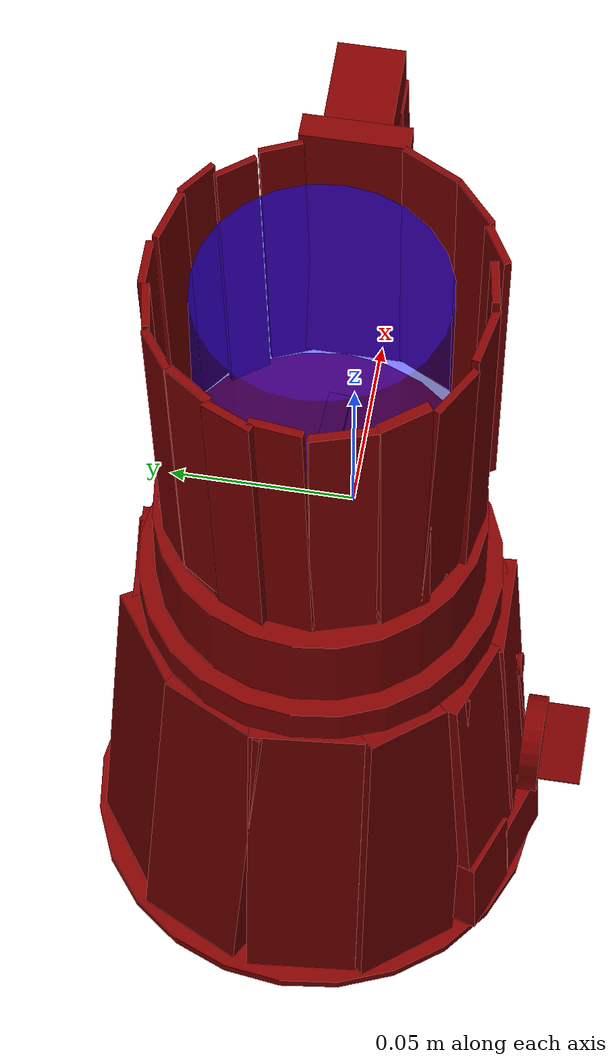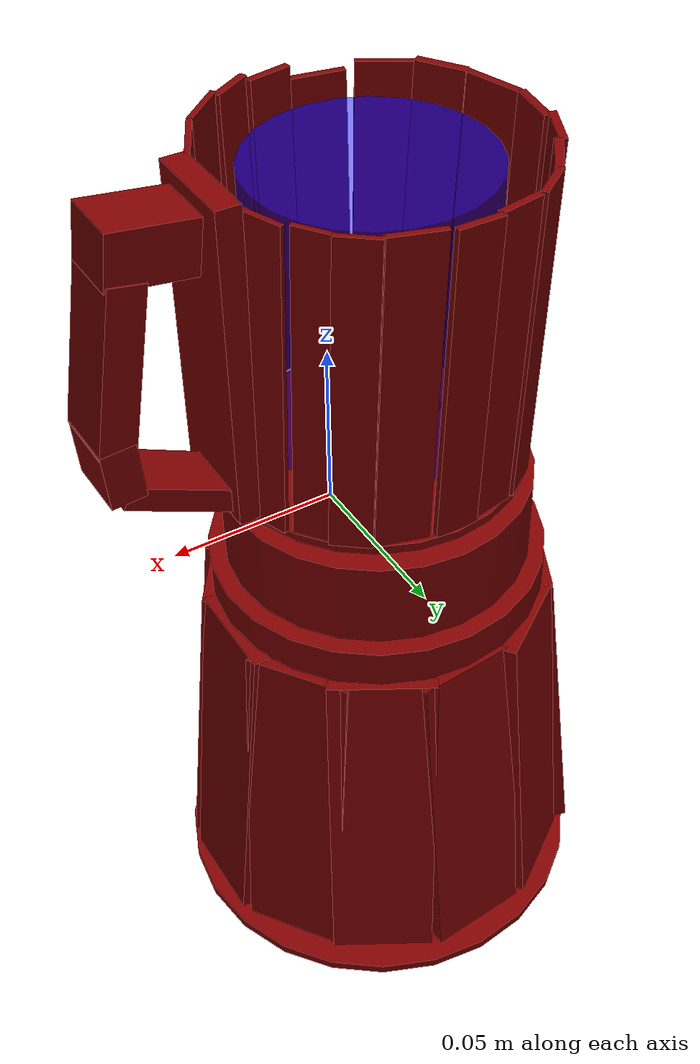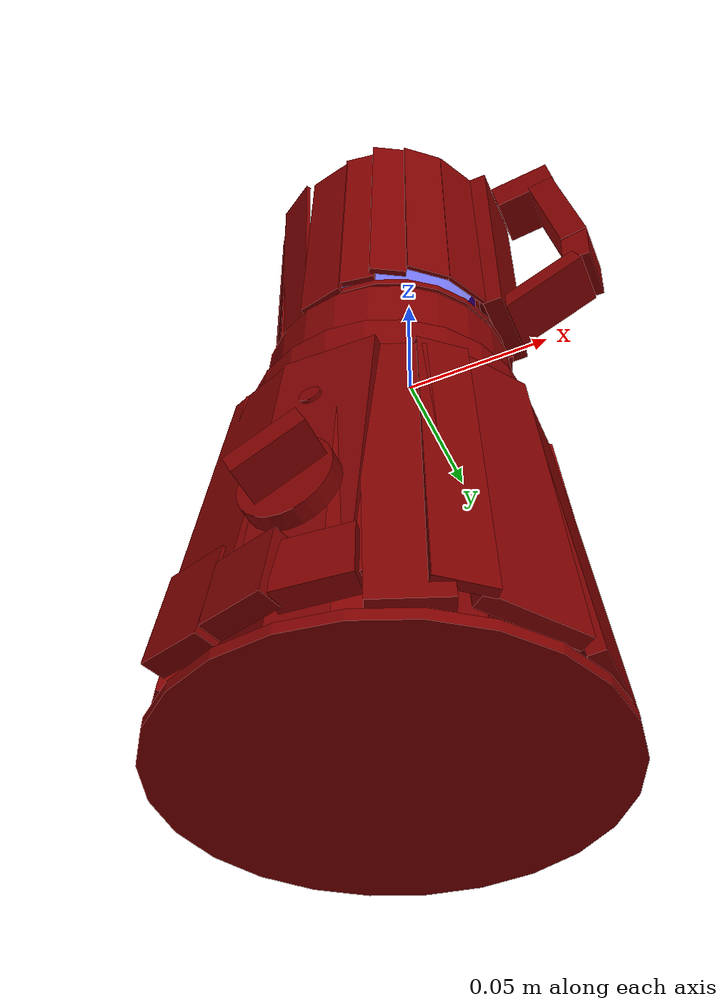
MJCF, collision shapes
<?xml version='1.0' encoding='UTF-8'?>
<mujoco model="model">
  <option timestep="0.002" gravity="0.0 0.0 -9.81"/>
  <compiler angle="radian"/>
  <asset>
    <mesh file="visuals/blade.obj" name="blade_vis"/>
    <mesh file="visuals/Body001.obj" name="Body001_vis"/>
    <texture file="visuals/T_BC001.png" name="knob_speed_material" type="2d"/>
    <mesh file="visuals/pitcher.obj" name="pitcher_vis"/>
    <mesh file="visuals/pitcher_main.obj" name="pitcher_main_vis"/>
    <mesh file="visuals/power_button.obj" name="power_button_vis"/>
    <texture file="visuals/T_BC001.png" name="Body001_material" type="2d"/>
    <material name="Body001_material" rgba="1 1 1 1.0" texture="Body001_material" shininess="0.7126775979995728" specular="1"/>
    <texture file="visuals/T_BC001.png" name="power_button_material" type="2d"/>
    <material name="power_button_material" rgba="1 1 1 1.0" texture="power_button_material" shininess="0.7126775979995728" specular="1"/>
    <texture file="visuals/T_BC001.png" name="pitcher_material" type="2d"/>
    <material name="pitcher_material" rgba="1 1 1 1.0" texture="pitcher_material" shininess="0.7126775979995728" specular="1"/>
    <texture file="visuals/T_BC001.png" name="blade_material" type="2d"/>
    <material name="blade_material" rgba="1 1 1 1.0" texture="blade_material" shininess="0.7126775979995728" specular="1"/>
    <texture file="visuals/T_BC001.png" name="pitcher_main_material" type="2d"/>
    <material name="pitcher_main_material" rgba="1 1 1 0.800000011920929" texture="pitcher_main_material" shininess="0.8092784583568573" specular="1"/>
    <mesh file="visuals/knob_speed.obj" name="knob_speed_vis"/>
    <material name="knob_speed_material" rgba="1 1 1 1.0" texture="knob_speed_material" shininess="0.7126775979995728" specular="1"/>
  </asset>
  <default>
    <default class="visual">
      <geom conaffinity="0" contype="0" group="1" type="mesh"/>
    </default>
    <default class="collision">
      <geom group="0" rgba="0.5 0 0 0.5" density="1.0" solref="0.004 1" solimp="0.998 0.998 0.001"/>
    </default>
    <default class="spawn">
      <geom group="0" rgba="1 1 1 0.5" contype="0" conaffinity="0"/>
      <site group="0" rgba="1 1 1 0.5"/>
    </default>
    <default class="region">
      <geom group="1" conaffinity="0" contype="0" rgba="0 1 0 0" mass="0"/>
    </default>
  </default>
  <worldbody>
    <body>
      <body name="object">
        <geom mesh="Body001_vis" type="mesh" solimp="0.998 0.998 0.001" solref="0.001 1" friction="0.95 0.3 0.1" class="visual" material="Body001_material"/>
        <geom type="box" pos="-0.06414317 0.00293150 -0.08131555" size="0.003986308351159096 0.015745818614959717 0.054941773414611816" quat="0.9969801902770996 0.0029917170759290457 0.05849111080169678 0.050993725657463074" class="collision"/>
        <geom type="box" pos="-0.05898194 0.03102392 -0.08121618" size="0.003986308351159096 0.015745816752314568 0.054941773414611816" quat="0.9726268649101257 0.021922767162322998 0.05430987849831581 -0.22487075626850128" class="collision"/>
        <geom type="box" pos="-0.03821645 0.05216332 -0.08130155" size="0.003986308351159096 0.01574581488966942 0.054941773414611816" quat="0.886173665523529 0.020056521520018578 0.0385282076895237 -0.4613128900527954" class="collision"/>
        <geom type="box" pos="-0.01100860 0.06139588 -0.08139399" size="0.0026534826029092073 0.015745816752314568 0.054941773414611816" quat="0.7362769842147827 0.0351811982691288 0.03839356079697609 -0.6746735572814941" class="collision"/>
        <geom type="box" pos="0.01633125 0.05513551 -0.08116253" size="0.0021790468599647284 0.01574581488966942 0.054941777139902115" quat="0.49935898184776306 0.04383734613656998 0.025309504941105843 -0.8649151921272278" class="collision"/>
        <geom type="box" pos="0.03545922 0.03712036 -0.08134439" size="0.0018078562570735812 0.01574581488966942 0.054941773414611816" quat="0.30036523938179016 0.045378535985946655 0.014307779259979725 -0.9526367783546448" class="collision"/>
        <geom type="box" pos="0.04363298 0.01003369 -0.08086122" size="0.0026048512663692236 0.015745816752314568 0.054941773414611816" quat="7.540233326608359e-08 0.050300274044275284 3.797564485097382e-09 -0.9987341165542603" class="collision"/>
        <geom type="box" pos="0.03481350 -0.01944534 -0.08094111" size="0.0027222405187785625 0.015745816752314568 0.054941777139902115" quat="0.30034273862838745 -0.04684454947710037 0.01477002538740635 0.9525658488273621" class="collision"/>
        <geom type="box" pos="0.02587351 -0.03571680 -0.08130847" size="0.0014966638991609216 0.008354835212230682 0.05494178459048271" quat="0.4205015301704407 -0.047924142330884933 0.03366672992706299 0.9053995013237" class="collision"/>
        <geom type="box" pos="-0.05438795 -0.02428223 -0.08246415" size="0.003986308351159096 0.01574581488966942 0.054941773414611816" quat="0.9343163371086121 0.02062777802348137 0.05481475219130516 0.35160043835639954" class="collision"/>
        <geom type="box" pos="-0.03554909 -0.03983053 -0.07036536" size="0.003986308351159096 0.012453826144337654 0.04198986291885376" quat="0.8163965344429016 -0.016887996345758438 0.04775163158774376 0.5752662420272827" class="collision"/>
        <geom type="box" pos="0.00839477 -0.04297458 -0.08388708" size="0.002096703043207526 0.012412848882377148 0.04728870466351509" quat="0.560683012008667 -0.040940262377262115 0.030546532943844795 0.8264535069465637" class="collision"/>
        <geom type="box" pos="-0.04175205 -0.04451987 -0.12138034" size="0.0035907153505831957 0.010427257977426052 0.014271192252635956" quat="0.8109872341156006 0.0060891201719641685 0.05432721972465515 0.5825042128562927" class="collision"/>
        <geom type="box" pos="-0.02215584 -0.05125855 -0.12474555" size="0.003590715117752552 0.010427256114780903 0.010370254516601562" quat="0.8053919076919556 -0.005206680856645107 0.04405323788523674 0.5910804271697998" class="collision"/>
        <geom type="box" pos="-0.00340873 -0.05103144 -0.12598403" size="0.003590715816244483 0.010427255183458328 0.008998429402709007" quat="0.6632282137870789 -0.057456206530332565 0.01936173252761364 0.7459572553634644" class="collision"/>
        <geom type="box" pos="0.01315517 -0.04063753 -0.08596016" size="0.003590715117752552 0.010427254252135754 0.05563155561685562" quat="0.5456677079200745 -0.05234861001372337 0.011771123856306076 0.8362821340560913" class="collision"/>
        <geom type="cylinder" pos="-0.01079778 0.00852986 -0.13985953" size="0.05258236825466156 0.004347818437963724" quat="1.0 0.0 0.0 0.0" class="collision"/>
        <geom type="cylinder" pos="-0.01079778 0.00852986 -0.14579666" size="0.06486986577510834 0.0016201762482523918" quat="1.0 0.0 0.0 0.0" class="collision"/>
        <geom type="cylinder" pos="-0.01113476 0.00702684 -0.02817565" size="0.049913439899683 0.01324945967644453" quat="1.0 0.0 0.0 0.0" class="collision"/>
        <geom type="box" pos="-0.00909902 -0.04518037 -0.07987407" size="0.003590715117752552 0.015328536741435528 0.04948468133807182" quat="0.70053631067276 -0.018481511622667313 0.03286641836166382 0.7126199007034302" class="collision"/>
        <body name="power_button">
          <joint axis="-0.0747469961643219 0.992827296257019 -0.09331010282039642" pos="-0.01069985 -0.04866998 -0.05617259" limited="true" name="power_button_joint" range="0.0 0.0015" type="slide" damping="1" frictionloss="1" armature=".01" stiffness="0.2" springref="-0.1"/>
          <geom mesh="power_button_vis" type="mesh" solimp="0.998 0.998 0.001" solref="0.001 1" friction="0.95 0.3 0.1" class="visual" material="power_button_material"/>
          <geom class="collision" type="cylinder" pos="-0.01073571 -0.04942436 -0.05600203" size="0.0033137896098196507 0.0006" quat="0.7030347585678101 0.6229007840156555 -0.2200489342212677 0.2632777690887451" name="power_button_main"/>
        </body>
        <body name="pitcher">
          <geom mesh="pitcher_vis" type="mesh" solimp="0.998 0.998 0.001" solref="0.001 1" friction="0.95 0.3 0.1" class="visual" material="pitcher_material"/>
          <geom type="cylinder" pos="-0.01116147 0.00577703 0.00309759" size="0.00906098261475563 0.008652156218886375" quat="1.0 0.0 0.0 0.0" class="collision"/>
          <geom class="collision" type="box" pos="0.06357763 0.00620615 0.07631346" size="0.005088288802653551 0.009546133689582348 0.023384999483823776" quat="0.9961947202682495 0.0 -0.08715573698282242 0.0" name="pitcher_handle_2"/>
          <geom class="collision" type="box" pos="0.05218959 0.00616715 0.10434674" size="0.007519893813878298 0.008824963122606277 0.01210277620702982" quat="0.7518044114112854 -0.0004668088222388178 0.6593855023384094 0.0008093593642115593" name="pitcher_handle_3"/>
          <geom class="collision" type="box" pos="0.05194099 0.00657414 0.03293036" size="0.0033454347867518663 0.009491372853517532 0.016489258036017418" quat="0.843391478061676 0.0 0.5372995734214783 0.0" name="pitcher_handle_0"/>
          <geom type="cylinder" pos="-0.01113476 0.00702684 -0.00106360" size="0.04508111625909805 0.01324945967644453" quat="1.0 0.0 0.0 0.0" class="collision"/>
          <geom class="collision" type="box" pos="0.06706209 0.00668775 0.04700918" size="0.004980669356882572 0.009491369128227234 0.008270477876067162" quat="0.9994047284126282 0.007976321503520012 0.033564552664756775 -0.00021685115643776953" name="pitcher_handle_1"/>
          <body name="blade">
            <geom mesh="blade_vis" type="mesh" solimp="0.998 0.998 0.001" solref="0.001 1" friction="0.95 0.3 0.1" class="visual" material="blade_material"/>
            <geom type="box" pos="-0.01133486 0.00447850 0.02316258" size="0.003073260420933366 0.020795846357941628 0.0011587251210585237" quat="1.0 0.0 0.0 0.0" class="collision"/>
            <geom type="box" pos="-0.02736820 0.00661103 0.02573356" size="0.0030642191413789988 0.010015010833740234 0.0011587272165343165" quat="0.6698104739189148 -0.09623399376869202 0.08818221837282181 -0.7309697866439819" class="collision"/>
            <geom type="box" pos="0.00365382 0.00661103 0.02564197" size="0.0030642191413789988 0.010015010833740234 0.0011587273329496384" quat="0.6653264760971069 0.12802685797214508 -0.11731503903865814 -0.7260764241218567" class="collision"/>
          </body>
          <body name="pitcher_main">
            <geom class="region" type="cylinder" size="0.033242713660001755 0.03796624019742012" pos="-0.00991135 0.00687593 0.06871881" rgba="0 0 1 0.5" name="reg_int"/>
            <geom mesh="pitcher_main_vis" type="mesh" solimp="0.998 0.998 0.001" solref="0.001 1" friction="0.95 0.3 0.1" class="visual" material="pitcher_main_material"/>
            <geom type="box" pos="-0.05201297 -0.00544804 0.06401412" size="0.0011411537416279316 0.008665076456964016 0.04689289629459381" quat="0.9886313080787659 -0.0007852276903577149 -0.02220688760280609 0.14870896935462952" class="collision"/>
            <geom type="box" pos="-0.04462621 -0.01957276 0.06363554" size="0.0013928755652159452 0.007175058592110872 0.047899119555950165" quat="0.9493206143379211 -0.010618006810545921 -0.024758541956543922 0.31315281987190247" class="collision"/>
            <geom type="box" pos="-0.03491062 -0.02905723 0.06356143" size="0.0009027808555401862 0.007999305613338947 0.046975307166576385" quat="0.8626777529716492 0.0040064239874482155 -0.025761159136891365 0.5050815939903259" class="collision"/>
            <geom type="box" pos="0.00641023 -0.03413283 0.06730504" size="0.0010227970778942108 0.00639775674790144 0.04582451283931732" quat="0.49985271692276 0.00337212230078876 -0.0017554215155541897 0.8661020994186401" class="collision"/>
            <geom type="box" pos="0.01845595 -0.02742273 0.06795305" size="0.0007466371753253043 0.007702946662902832 0.04582451656460762" quat="0.4149072468280792 -0.003698088927194476 0.0005286827799864113 0.9098560214042664" class="collision"/>
            <geom type="box" pos="0.03522604 0.00574075 0.06760135" size="0.0034557972103357315 0.01414184644818306 0.04613758996129036" quat="1.0 0.0 0.0 0.0" class="collision"/>
            <geom type="box" pos="0.01651037 0.04200349 0.06642398" size="0.0007405881187878549 0.005810028873383999 0.04582451283931732" quat="0.4493381381034851 0.004741608630865812 -0.01437248196452856 -0.8932335376739502" class="collision"/>
            <geom type="box" pos="0.00408397 0.04678640 0.06605563" size="0.0008923254208639264 0.007550706155598164 0.04582451283931732" quat="0.6081756353378296 0.001975441351532936 -0.015004957094788551 -0.7936581969261169" class="collision"/>
            <geom type="box" pos="-0.03599252 0.04240891 0.06529191" size="0.0009781541302800179 0.006452578119933605 0.04582451283931732" quat="0.8918564915657043 -0.0047164056450128555 -0.014380787499248981 -0.45206522941589355" class="collision"/>
            <geom type="box" pos="-0.04469908 0.03284545 0.06531050" size="0.0011494028149172664 0.007025028578937054 0.04582451656460762" quat="0.9534119963645935 -0.006988314911723137 -0.013424396514892578 -0.30129143595695496" class="collision"/>
            <geom type="cylinder" pos="-0.00994867 0.00754640 0.01852010" size="0.04288448393344879 0.0013050753623247147" quat="1.0 0.0 0.0 0.0" class="collision"/>
            <geom type="box" pos="-0.00497821 -0.03502184 0.06734587" size="0.001022796961478889 0.006397756282240152 0.04582451283931732" quat="0.6432011723518372 0.003626530757173896 -0.0011406076373532414 0.7656878232955933" class="collision"/>
            <geom type="box" pos="-0.01869681 -0.03497289 0.06361109" size="0.0010227971943095326 0.008234738372266293 0.04582451283931732" quat="0.7698814272880554 0.0037721358239650726 -0.0004729782813228667 0.6381756067276001" class="collision"/>
            <geom type="box" pos="-0.05242275 0.02184720 0.06538087" size="0.0011494026985019445 0.007025028113275766 0.04582451656460762" quat="0.9765552878379822 -0.00816198717802763 -0.012744918465614319 -0.2147340178489685" class="collision"/>
            <geom type="box" pos="-0.05422102 0.00973624 0.06560187" size="0.0011494028149172664 0.007025029044598341 0.04582451656460762" quat="0.9976705312728882 -0.009973459877073765 -0.011383378878235817 -0.06651640683412552" class="collision"/>
            <geom type="box" pos="-0.02339473 0.04737251 0.06545511" size="0.0009781541302800179 0.006452578119933605 0.04582451283931732" quat="0.7688629031181335 -0.0013972119195386767 -0.015069808810949326 -0.6392345428466797" class="collision"/>
            <geom type="box" pos="-0.01078633 0.04971658 0.06567467" size="0.000978154013864696 0.006452578119933605 0.04582451283931732" quat="0.7119560837745667 -0.00011576183896977454 -0.015133999288082123 -0.702060878276825" class="collision"/>
            <geom type="box" pos="0.02234555 0.03313158 0.06549271" size="0.000740588060580194 0.005810028873383999 0.04582451283931732" quat="0.3184846043586731 0.006726743653416634 -0.01355736143887043 -0.9478071928024292" class="collision"/>
            <geom type="box" pos="0.03010196 0.02289193 0.06587805" size="0.0007405880023725331 0.005810028873383999 0.04582451283931732" quat="0.1984029859304428 0.008357164449989796 -0.012617831118404865 -0.9800036549568176" class="collision"/>
            <geom type="box" pos="0.02824378 -0.01489266 0.06796412" size="0.0007466371171176434 0.00865502841770649 0.04582451283931732" quat="0.23986472189426422 -0.0035369955003261566 0.0012020895956084132 0.9707991480827332" class="collision"/>
          </body>
        </body>
        <body name="knob_speed">
          <joint axis="0.0 1.0 0.0" pos="-0.01099387 -0.05696104 -0.09707736" limited="true" name="knob_speed_joint" range="0.0 4.276056667386108" type="hinge" damping="0.05" frictionloss="0.1" armature="0.001"/>
          <geom mesh="knob_speed_vis" type="mesh" solimp="0.998 0.998 0.001" solref="0.001 1" friction="0.95 0.3 0.1" class="visual" material="knob_speed_material"/>
          <geom type="cylinder" pos="-0.01121220 -0.05481474 -0.09766724" size="0.01372851338237524 0.0028194477781653404" quat="0.7071067094802856 0.7071068286895752 0.0 0.0" class="collision" density="0.001"/>
          <geom class="collision" type="box" pos="-0.01058615 -0.06368847 -0.09685497" size="0.003505827160552144 0.00607439037412405 0.011031357571482658" quat="0.5197781324386597 -3.226090683483562e-08 -0.8543012738227844 -5.751893183969514e-08" name="knob_speed_main" density="0.001"/>
        </body>
        <geom class="region" name="reg_main" type="box" pos="-0.010925574999999996 0.006807835000000002 0.0" size="0.064281375 0.064282685 0.14836363"/>
      </body>
      <site rgba="0 1 0 0" size="0.005" pos="-0.00489641 0.00664501 0.12470886" name="anchor_site"/>
    </body>
  </worldbody>
  <actuator>
    <motor name="power_button_joint_actuator" joint="power_button_joint" gear="0.5"/>
    <motor name="knob_speed_joint_actuator" joint="knob_speed_joint" gear="10"/>
  </actuator>
</mujoco>
